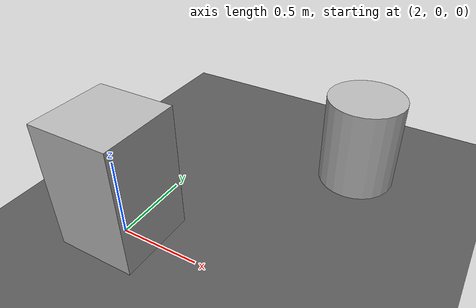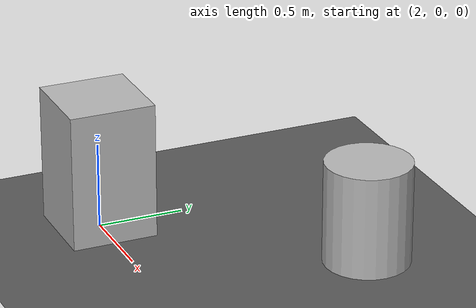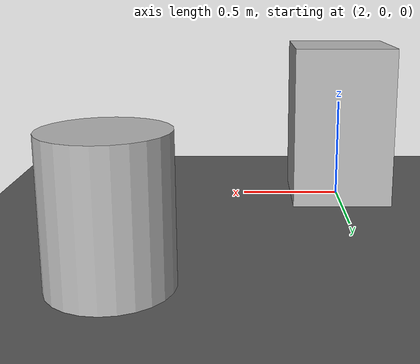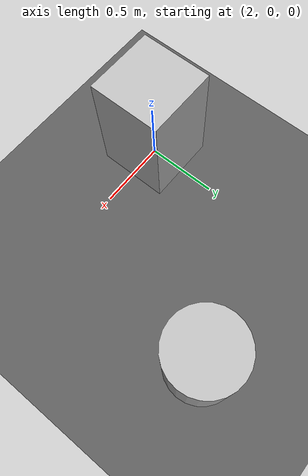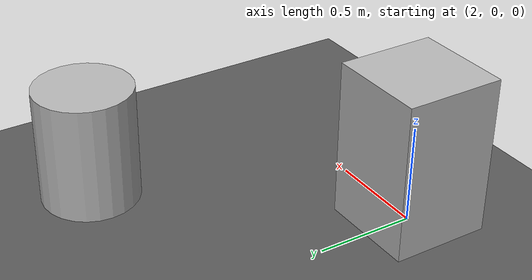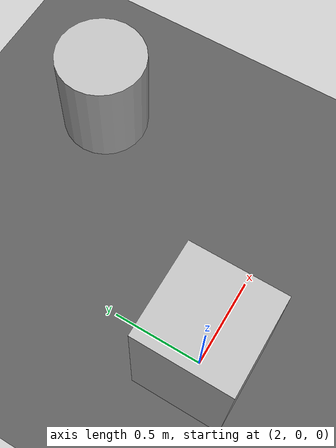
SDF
<?xml version="1.0" ?>
<sdf version="1.9">
  <world name="argus_obstacle_course">
    <physics name="1ms" type="gz"/>
    <plugin filename="gz-sim-physics-system" name="gz::sim::systems::Physics"/>
    <plugin filename="gz-sim-user-commands-system" name="gz::sim::systems::UserCommands"/>
    <plugin filename="gz-sim-scene-broadcaster-system" name="gz::sim::systems::SceneBroadcaster"/>
    <light type="directional" name="sun"><cast_shadows>true</cast_shadows><pose>0 0 10 0 0 0</pose><diffuse>1 1 1 1</diffuse><specular>0.2 0.2 0.2 1</specular><direction>-0.5 0.1 -0.9</direction></light>
    <model name="ground"><static>true</static><link name="link"><collision name="collision"><geometry><plane><normal>0 0 1</normal><size>30 30</size></plane></geometry></collision><visual name="visual"><geometry><plane><normal>0 0 1</normal><size>30 30</size></plane></geometry><material><ambient>0.35 0.35 0.35 1</ambient></material></visual></link></model>
    <model name="obstacle_1"><static>true</static><pose>2 0 0.4 0 0 0</pose><link name="link"><collision name="collision"><geometry><box><size>0.5 0.5 0.8</size></box></geometry></collision><visual name="visual"><geometry><box><size>0.5 0.5 0.8</size></box></geometry></visual></link></model>
    <model name="obstacle_2"><static>true</static><pose>3 1.2 0.3 0 0 0</pose><link name="link"><collision name="collision"><geometry><cylinder><radius>0.25</radius><length>0.6</length></cylinder></geometry></collision><visual name="visual"><geometry><cylinder><radius>0.25</radius><length>0.6</length></cylinder></geometry></visual></link></model>
  </world>
</sdf>
